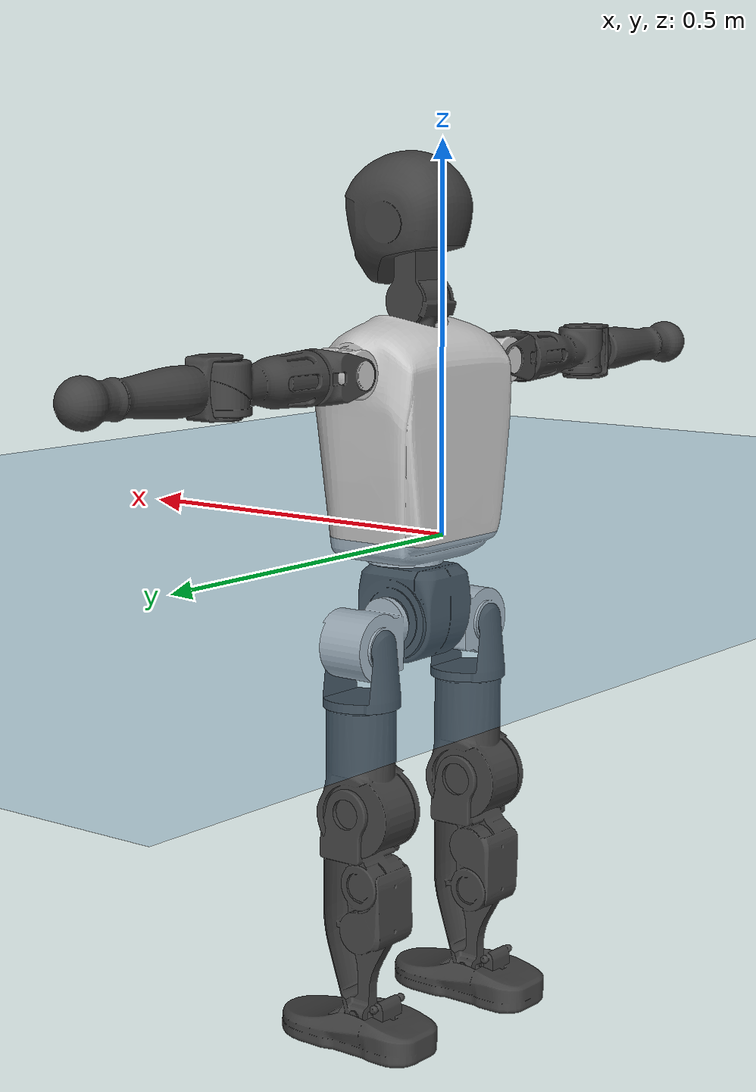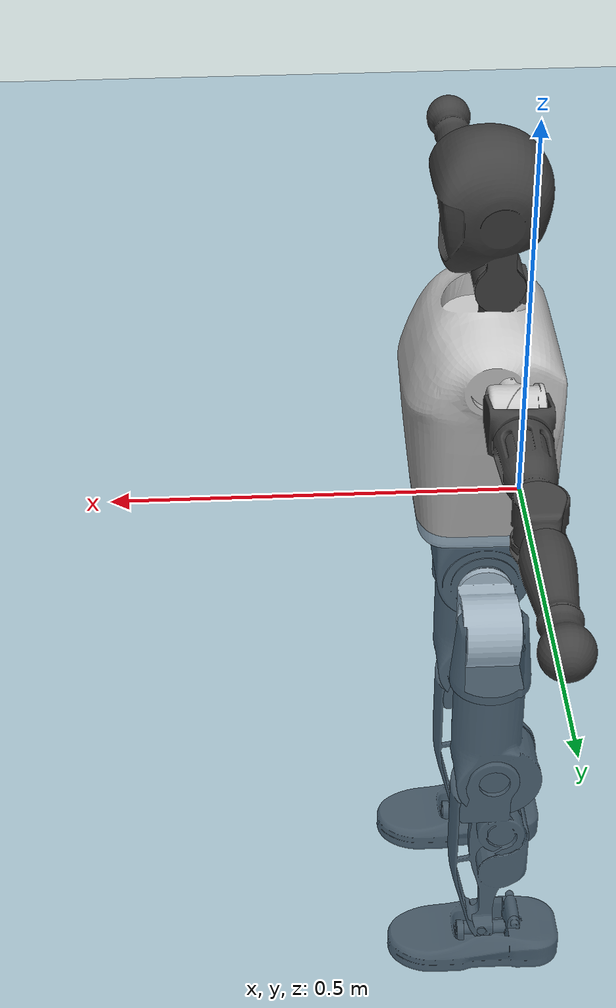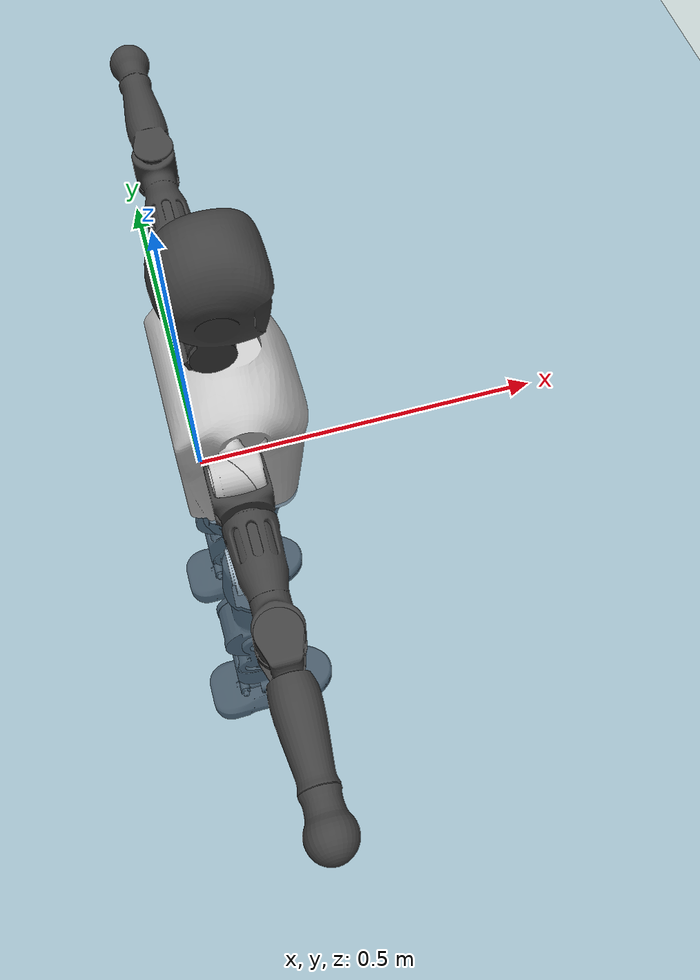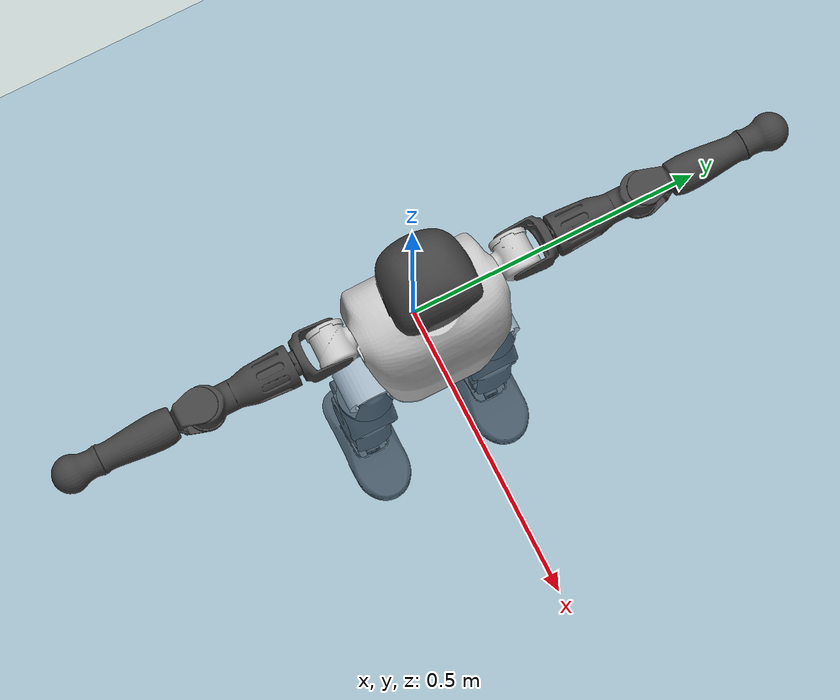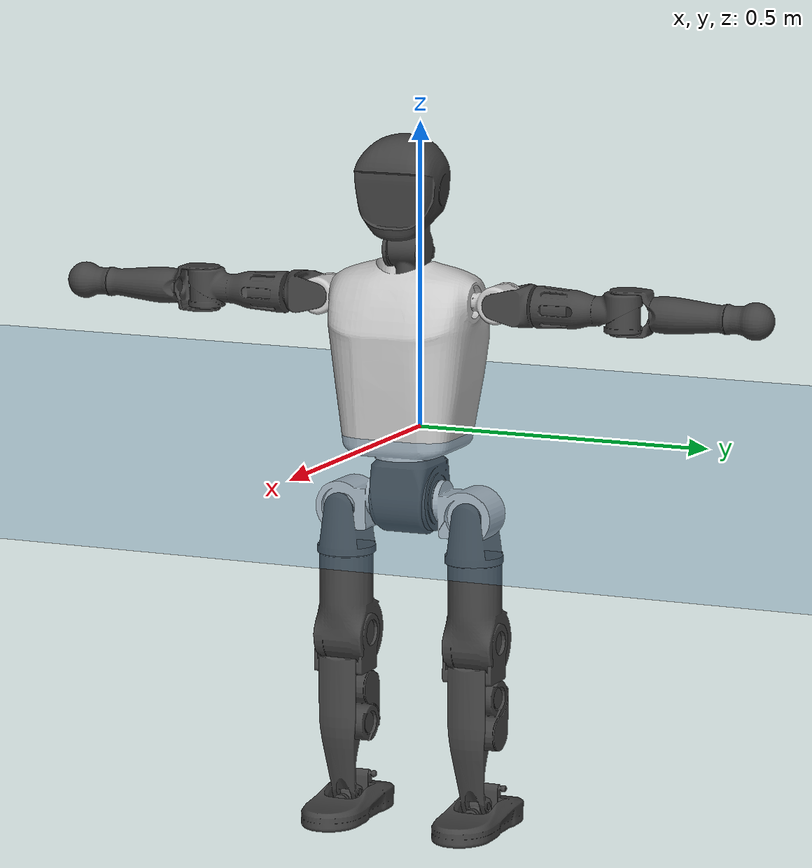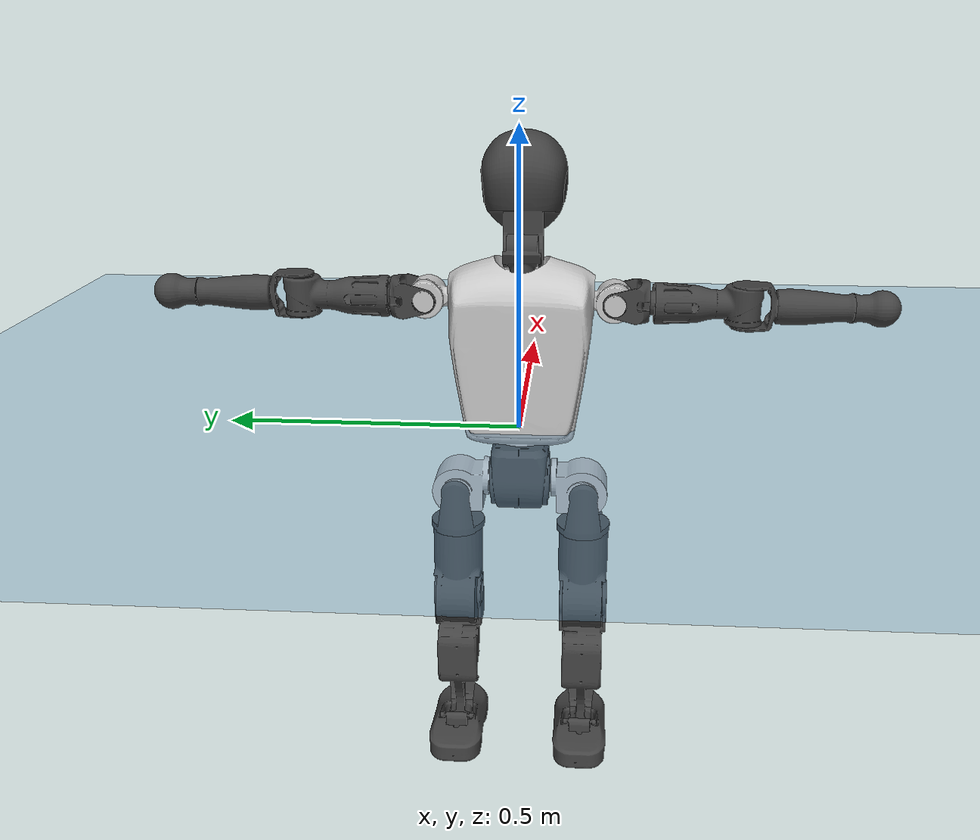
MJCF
<mujoco model="T1">
  <compiler angle="radian" assetdir="assets" balanceinertia="true" inertiafromgeom="false"/>

  <option timestep="0.005" density="1.2" viscosity="2e-05"/>

  <size nkey="1"/>

  <visual>
    <quality shadowsize="8192"/>
    <map shadowclip="0.5"/>
  </visual>

  <default>
    <default class="/">
      <joint armature="0.01" damping="0.01" frictionloss="0.1"/>
      <geom contype="0" conaffinity="0" group="1" solref="-1000 -80"/>
      <site size="0.01 0.005 0.005" group="5"/>
      <general forcelimited="true" biastype="affine" gainprm="25" biasprm="0 -25 -0.6"/>
      <default class="t1">
        <geom rgba="0.25 0.25 0.25 1"/>
        <default class="visual">
          <geom type="mesh" group="2"/>
        </default>
        <default class="collision">
          <geom group="3"/>
        </default>
        <default class="foot">
          <geom size="0.1115 0.05 0.015" type="box" condim="6" group="4" priority="1" solimp="0.015 1 0.015"/>
        </default>
        <default class="reward_collision_sphere">
          <geom group="5" rgba="1 0 0 1"/>
        </default>
      </default>
    </default>
  </default>

  <asset>
    <texture type="skybox" colorspace="auto" name="//unnamed_texture_0" builtin="gradient" rgb1="0.95 0.95 0.95" rgb2="0.95 0.95 0.95" width="100" height="600"/>
    <texture type="2d" colorspace="auto" name="texplane" builtin="checker" rgb1="0.345 0.575 0.748" rgb2="0.345 0.575 0.748" markrgb="1 1 1" width="512" height="512"/>
    <material name="MatPlane" class="/" texture="texplane" texuniform="true" texrepeat="2 2" specular="0.9"/>
    <mesh name="Trunk" class="/" file="Trunk.stl"/>
    <mesh name="H1" class="/" file="H1.stl"/>
    <mesh name="H2" class="/" file="H2.stl"/>
    <mesh name="AL1" class="/" file="AL1.stl"/>
    <mesh name="AL2" class="/" file="AL2.stl"/>
    <mesh name="AL3" class="/" file="AL3.stl"/>
    <mesh name="left_hand_link" class="/" file="left_hand_link.stl"/>
    <mesh name="AR1" class="/" file="AR1.stl"/>
    <mesh name="AR2" class="/" file="AR2.stl"/>
    <mesh name="AR3" class="/" file="AR3.stl"/>
    <mesh name="right_hand_link" class="/" file="right_hand_link.stl"/>
    <mesh name="Waist" class="/" file="Waist.stl"/>
    <mesh name="Hip_Pitch_Left" class="/" file="Hip_Pitch_Left.stl"/>
    <mesh name="Hip_Roll_Left" class="/" file="Hip_Roll_Left.stl"/>
    <mesh name="Hip_Yaw_Left" class="/" file="Hip_Yaw_Left.stl"/>
    <mesh name="Shank_Left" class="/" file="Shank_Left.stl"/>
    <mesh name="Ankle_Cross_Left" class="/" file="Ankle_Cross_Left.stl"/>
    <mesh name="left_foot_link" class="/" file="left_foot_link.stl"/>
    <mesh name="Hip_Pitch_Right" class="/" file="Hip_Pitch_Right.stl"/>
    <mesh name="Hip_Roll_Right" class="/" file="Hip_Roll_Right.stl"/>
    <mesh name="Hip_Yaw_Right" class="/" file="Hip_Yaw_Right.stl"/>
    <mesh name="Shank_Right" class="/" file="Shank_Right.stl"/>
    <mesh name="Ankle_Cross_Right" class="/" file="Ankle_Cross_Right.stl"/>
    <mesh name="right_foot_link" class="/" file="right_foot_link.stl"/>
  </asset>

  <worldbody>
    <geom name="floor" class="/" size="100 100 0.125" type="plane" group="0" material="MatPlane"/>
    <light name="toplight_shadow" class="/" pos="0 0 5" dir="0.0990148 0.0990148 -0.990148" type="directional" ambient="0.04 0.04 0.04" diffuse="0.55 0.55 0.55" specular="0.12 0.12 0.12"/>
    <light name="toplight_fill" class="/" pos="0 0 5" dir="0.0990148 0.0990148 -0.990148" type="directional" castshadow="false" ambient="0.04 0.04 0.04" diffuse="0.3 0.3 0.3" specular="0.08 0.08 0.08"/>
    <body name="trunk" childclass="t1" pos="-0.00270955 -0.000723927 0.00238562" quat="0.999999 0.000805268 -0.000740924 4.04128e-05">
      <inertial pos="0.0380676 -0.00329565 0.104837" quat="0.999908 0.00350642 -0.0111655 -0.0068335" mass="9.0231" diaginertia="0.0150865 0.100706 0.0496549"/>
      <joint name="//unnamed_joint_0" type="free" armature="0" damping="0" frictionloss="0"/>
      <geom name="//unnamed_geom_1" class="visual" rgba="0.76 0.76 0.76 1" mesh="Trunk"/>
      <geom name="//unnamed_geom_2" class="collision" size="0.0678573 0.0904765 0.135715" pos="0.0414521 0 0.116704" type="box"/>
      <geom name="//unnamed_geom_3" class="reward_collision_sphere" size="0.104048" pos="0.0414521 0 0.0972534"/>
      <geom name="//unnamed_geom_4" class="reward_collision_sphere" size="0.0135715" pos="0.0414521 0.0893257 0"/>
      <geom name="//unnamed_geom_5" class="reward_collision_sphere" size="0.0135715" pos="0.0414521 -0.0893257 0"/>
      <geom name="//unnamed_geom_6" class="reward_collision_sphere" size="0.0135715" pos="0.0414521 0.112445 0.175056"/>
      <geom name="//unnamed_geom_7" class="reward_collision_sphere" size="0.0135715" pos="0.0414521 -0.112445 0.175056"/>
      <site name="imu" pos="-0.00961936 0.00155812 -0.00321452" size="0.00904765"/>
      <camera name="track" pos="0 -2.10178 0" quat="0.707107 0.707107 0 0" mode="trackcom"/>
      <camera name="ego_camera" pos="0.084286 0 0.408464" quat="-0.5 -0.5 0.5 0.5"/>
      <body name="H1" pos="0.0430522 -0.0013986 0.235492" quat="0.999999 -0.000265962 -0.000142749 0.00111948">
        <inertial pos="0.00143111 -0.00196958 0.0579482" quat="0.768869 -0.0207164 0.0015671 0.639068" mass="0.33814" diaginertia="3.98299e-05 0.000299879 0.000130348"/>
        <joint name="AAHead_yaw" pos="0 0 0" axis="0.000383785 0.00227202 0.999997" range="-1.60677 1.60007" armature="0.0101128" damping="0.0129377" frictionloss="0.0837761"/>
        <geom name="//unnamed_geom_8" class="visual" mesh="H1"/>
        <body name="H2" pos="-2.46929e-05 -0.00167856 0.0594864" quat="1 6.28541e-05 -8.2378e-05 -0.000326218">
          <inertial pos="0.00489349 0.00253532 0.096451" quat="0.987105 0.114594 -0.0749979 -0.0828685" mass="0.460663" diaginertia="0.000314934 0.00250348 0.00149922"/>
          <joint name="Head_pitch" pos="0 0 0" axis="0.00019824 -0.99999 0.00449365" range="-1.25231 0.399671" armature="0.00981558" damping="0.00499669" frictionloss="0.0780825"/>
          <geom name="//unnamed_geom_9" class="visual" mesh="H2"/>
          <geom name="//unnamed_geom_10" class="collision" size="0.0723812" pos="0.00690869 0 0.106979"/>
          <geom name="//unnamed_geom_11" class="reward_collision_sphere" size="0.0814288" pos="0.0138174 0 0.0972534"/>
        </body>
      </body>
      <body name="AL1" pos="0.0378469 0.110447 0.214782" quat="0.999999 -0.000699535 0.000647295 0.00119016">
        <inertial pos="0.000340539 0.049511 0.00134849" quat="0.507036 0.494076 -0.501627 0.497166" mass="0.380416" diaginertia="0.000209996 0.00159694 0.000241182"/>
        <joint name="Left_Shoulder_Pitch" pos="0 0 0" axis="8.76985e-05 1 0.000105796" stiffness="0.0138963" range="-3.31795 1.16756" armature="0.00786337" damping="0.00267777" frictionloss="0.0955452"/>
        <geom name="//unnamed_geom_12" class="visual" rgba="0.76 0.76 0.76 1" mesh="AL1"/>
        <body name="AL2" pos="-0.00121657 0.0490662 -0.000651544" quat="0.999999 -0.000467013 0.000409843 -0.00133975">
          <inertial pos="0.0019595 0.0421348 7.61957e-05" quat="0.486884 0.511176 -0.489261 0.51212" mass="0.119343" diaginertia="6.26407e-05 0.00043106 0.000154736"/>
          <joint name="Left_Shoulder_Roll" pos="0 0 0" axis="-0.999964 0.0084743 -0.000386203" stiffness="0.0124488" range="-1.58443 1.6911" armature="0.0077187" damping="0.0163769" frictionloss="0.0885909"/>
          <geom name="//unnamed_geom_13" class="visual" mesh="AL2"/>
          <body name="AL3" pos="0.00192817 0.061682 -0.000300989" quat="1 0.000145103 0.00029564 -0.000408553">
            <inertial pos="0.000381875 0.0893164 -0.0029648" quat="0.711263 0.702869 -0.00844161 0.00288254" mass="0.70942" diaginertia="0.00194042 0.0159304 0.000535521"/>
            <joint name="Left_Elbow_Pitch" pos="0 0 0" axis="0.00352905 -0.999993 0.00106572" range="-2.3185 2.29979" armature="0.0086987" damping="0.0109736" frictionloss="0.0954799"/>
            <geom name="//unnamed_geom_14" class="visual" mesh="AL3"/>
            <geom name="//unnamed_geom_15" class="collision" size="0.0271429 0.0678573" pos="0 0.0525445 0" quat="0.707105 0.707108 0 0" type="cylinder"/>
            <geom name="//unnamed_geom_16" class="reward_collision_sphere" size="0.0325715"/>
            <body name="left_hand_link" pos="0.00276099 0.155112 0.00164728" quat="1 -0.000149685 -0.000628942 0.000550744">
              <inertial pos="-0.000211226 0.114039 -0.000237235" quat="0.706246 0.707951 0.000547348 -0.00454143" mass="0.249418" diaginertia="0.00132599 0.0102366 0.000192139"/>
              <joint name="Left_Elbow_Yaw" pos="0 0 0" axis="-0.0122364 0.00344455 0.999919" stiffness="0.00318928" range="-2.43368 -0.0200726" armature="0.0079075" damping="0.00845081" frictionloss="0.100356"/>
              <geom name="//unnamed_geom_17" class="visual" mesh="left_hand_link"/>
              <geom name="//unnamed_geom_18" class="collision" size="0.0271429 0.0791669" pos="0 0.136616 0" quat="0.707105 0.707108 0 0" type="cylinder"/>
              <geom name="//unnamed_geom_19" class="reward_collision_sphere" size="0.0452382"/>
              <geom name="//unnamed_geom_20" class="reward_collision_sphere" size="0.0316668" pos="0 0.115598 0"/>
              <geom name="//unnamed_geom_21" class="reward_collision_sphere" size="0.0316668" pos="0 0.225941 0"/>
            </body>
          </body>
        </body>
      </body>
      <body name="AR1" pos="0.0386897 -0.107652 0.211896" quat="1 0.000699512 -0.000109869 -0.000697723">
        <inertial pos="-0.00195168 -0.0468362 -0.000717942" quat="0.505171 0.498024 -0.502062 0.49468" mass="0.392844" diaginertia="0.000218238 0.0016778 0.000264957"/>
        <joint name="Right_Shoulder_Pitch" pos="0 0 0" axis="0.00121083 -0.999999 -0.00081371" stiffness="0.00730529" range="-1.2767 3.30331" armature="0.0081464" damping="0.0195674" frictionloss="0.0998557"/>
        <geom name="//unnamed_geom_22" class="visual" rgba="0.76 0.76 0.76 1" mesh="AR1"/>
        <body name="AR2" pos="-0.00206568 -0.0484101 0.000640372" quat="1 -3.18993e-06 3.79967e-05 0.000237745">
          <inertial pos="0.00112638 -0.0397356 0.00125989" quat="0.516407 0.483205 -0.505148 0.494633" mass="0.125979" diaginertia="6.37921e-05 0.000462944 0.000158264"/>
          <joint name="Right_Shoulder_Roll" pos="0 0 0" axis="-0.999998 0.00189122 -6.03448e-05" range="-1.78972 1.56646" armature="0.00902359" damping="0.00676946" frictionloss="0.0918662"/>
          <geom name="//unnamed_geom_23" class="visual" mesh="AR2"/>
          <body name="AR3" pos="0.00115135 -0.0642065 -0.00279446" quat="1 0.000354 -2.23097e-05 8.37004e-05">
            <inertial pos="0.00250228 -0.0920467 -0.00127836" quat="0.707086 0.707121 -0.00291225 -0.000234523" mass="0.78085" diaginertia="0.0021068 0.0172623 0.000574814"/>
            <joint name="Right_Elbow_Pitch" pos="0 0 0" axis="-0.00718253 0.999911 -0.0112431" range="-2.27142 2.26118" armature="0.00866623" damping="0.00785885" frictionloss="0.093027"/>
            <geom name="//unnamed_geom_24" class="visual" mesh="AR3"/>
            <geom name="//unnamed_geom_25" class="collision" size="0.0271429 0.0678573" pos="0 -0.0525445 0" quat="0.707105 0.707108 0 0" type="cylinder"/>
            <geom name="//unnamed_geom_26" class="reward_collision_sphere" size="0.0325715"/>
            <body name="right_hand_link" pos="-0.00104834 -0.153654 -0.00189389" quat="1 0.000147577 0.000959384 0.00022583">
              <inertial pos="-0.00221433 -0.114899 0.00246817" quat="0.70762 0.70655 0.00423181 0.00656242" mass="0.234527" diaginertia="0.00129621 0.0104091 0.000192447"/>
              <joint name="Right_Elbow_Yaw" pos="0 0 0" axis="0.00696913 0.00242213 0.999973" stiffness="0.00596542" range="0.013375 2.40666" armature="0.00827079" damping="0" frictionloss="0.102024"/>
              <geom name="//unnamed_geom_27" class="visual" mesh="right_hand_link"/>
              <geom name="//unnamed_geom_28" class="collision" size="0.0271429 0.0791669" pos="0 -0.136616 0" quat="0.707105 0.707108 0 0" type="cylinder"/>
              <geom name="//unnamed_geom_29" class="reward_collision_sphere" size="0.0452382"/>
              <geom name="//unnamed_geom_30" class="reward_collision_sphere" size="0.0316668" pos="0 -0.115598 0"/>
              <geom name="//unnamed_geom_31" class="reward_collision_sphere" size="0.0316668" pos="0 -0.225941 0"/>
            </body>
          </body>
        </body>
      </body>
      <body name="Waist" pos="0.0465795 0.00133028 -0.110623" quat="0.999999 -0.00011192 -0.00101941 -0.000679749">
        <inertial pos="0.0041351 -0.00164014 0.00961634" quat="0.983933 -0.00574538 -0.178288 -0.00747468" mass="1.86283" diaginertia="0.000836472 0.00675262 0.00414464"/>
        <joint name="Waist" pos="0 0 0" axis="-0.000732687 0.000135504 1" stiffness="0.0160681" range="-1.5621 1.56946" armature="0.0102288" damping="0.00608997" frictionloss="0.0891881"/>
        <geom name="//unnamed_geom_32" class="visual" mesh="Waist"/>
        <body name="Hip_Pitch_Left" pos="0.000812981 0.110537 -0.00300584" quat="0.999999 0.000696299 0.00145756 -0.0002758">
          <inertial pos="-0.00101249 -0.00526764 -0.0173002" quat="0.974703 0.222663 0.0188019 -0.00465864" mass="0.768807" diaginertia="0.000282131 0.00184188 0.00112362"/>
          <joint name="Left_Hip_Pitch" pos="0 0 0" axis="-0.00644657 0.999852 0.0159377" stiffness="0.000711132" range="-1.78763 1.56087" armature="0.0088838" damping="0.0100918" frictionloss="0.0827988"/>
          <geom name="//unnamed_geom_33" class="visual" rgba="0.76 0.76 0.76 1" mesh="Hip_Pitch_Left"/>
          <body name="Hip_Roll_Left" pos="-0.00176954 0.00231981 -0.0202918" quat="0.999999 0.00117974 -0.000637568 0.000378509">
            <inertial pos="-0.000951575 0.000535672 -0.051379" quat="0.708015 -0.00914252 0.000288703 0.706138" mass="0.304653" diaginertia="0.000277937 0.00198881 0.000463342"/>
            <joint name="Left_Hip_Roll" pos="0 0 0" axis="-0.99993 -0.00553144 0.0104544" range="-1.54752 0.253957" armature="0.00875233" damping="0.0168105" frictionloss="0.0839422"/>
            <geom name="//unnamed_geom_34" class="visual" mesh="Hip_Roll_Left"/>
            <geom name="//unnamed_geom_35" class="reward_collision_sphere" size="0.0497621"/>
            <body name="Hip_Yaw_Left" pos="-0.00201586 0.000551609 -0.0791104" quat="1 0.000556289 -0.000183556 0.000483913">
              <inertial pos="-0.00368357 0.000392575 -0.0879086" quat="0.697162 -0.0282746 -0.0292872 0.715757" mass="1.53899" diaginertia="0.003902 0.0320371 0.00211013"/>
              <joint name="Left_Hip_Yaw" pos="0 0 0" axis="-0.000456922 0.00308337 -0.999995" range="-0.955563 0.986975" armature="0.00881368" damping="0.0159331" frictionloss="0.0862095"/>
              <geom name="//unnamed_geom_36" class="visual" mesh="Hip_Yaw_Left"/>
              <geom name="//unnamed_geom_37" class="collision" size="0.0452382 0.0723812" type="cylinder"/>
              <body name="Shank_Left" pos="-0.00747146 -0.000735516 -0.130688" quat="1 -6.9732e-05 4.99217e-05 0.000223917">
                <inertial pos="-0.00197858 0.00175777 -0.121332" quat="0.997835 0.00325236 -0.0254581 0.0605492" mass="1.2848" diaginertia="0.00534178 0.0443398 0.0015851"/>
                <joint name="Left_Knee_Pitch" pos="0 0 0" axis="-0.00830515 0.999948 0.00599442" range="0.0468968 2.35147" armature="0.0103375" damping="0.0213712" frictionloss="0.077949"/>
                <geom name="//unnamed_geom_38" class="visual" mesh="Shank_Left"/>
                <geom name="//unnamed_geom_39" class="collision" size="0.0452382 0.0678573" pos="0 0 -0.116704" type="cylinder"/>
                <geom name="//unnamed_geom_40" class="reward_collision_sphere" size="0.0588097"/>
                <body name="Ankle_Cross_Left" pos="0.00303164 0.00192629 -0.274165" quat="1 0.000267642 -0.000198385 -6.80275e-05">
                  <inertial pos="-0.00225277 9.3792e-05 -0.00559342" quat="0.436208 0.554715 0.554304 0.441318" mass="0.0546618" diaginertia="4.75885e-06 3.46823e-05 1.00548e-05"/>
                  <joint name="Left_Ankle_Pitch" pos="0 0 0" axis="0.00405717 0.999973 -0.00614478" stiffness="0.009476" range="-0.926146 0.301041" armature="0.00905432" damping="0.0149702" frictionloss="0.07885"/>
                  <geom name="//unnamed_geom_41" class="visual" mesh="Ankle_Cross_Left"/>
                  <body name="left_foot_link" pos="-0.000525632 0.0020341 -0.0122826" quat="1 -0.000784143 -0.000264419 -0.000226629">
                    <inertial pos="-0.000883855 -0.00109305 -0.0115439" quat="-0.00235035 0.622202 0.000222506 0.782853" mass="0.521932" diaginertia="0.000435345 0.00316706 0.00194051"/>
                    <joint name="Left_Ankle_Roll" pos="0 0 0" axis="-0.999874 -0.0143223 0.00687923" range="-0.419587 0.393858" armature="0.00915621" damping="0.00160272" frictionloss="0.102815"/>
                    <geom name="//unnamed_geom_42" class="visual" mesh="left_foot_link"/>
                    <geom name="left_foot" class="foot" size="0.10258 0.0410112 0.0148444" pos="0.00690869 0 -0.014588"/>
                    <geom name="//unnamed_geom_44" class="reward_collision_sphere" size="0.0470478" pos="0.00690869 0 -0.014588"/>
                    <geom name="//unnamed_geom_45" class="reward_collision_sphere" size="0.0271429" pos="0.0656326 -0.0241705 -0.014588"/>
                    <geom name="//unnamed_geom_46" class="reward_collision_sphere" size="0.0271429" pos="-0.0483608 -0.0241705 -0.014588"/>
                    <site name="left_foot" class="foot" pos="0.00690869 0 -0.014588" size="0.00904765"/>
                  </body>
                </body>
              </body>
            </body>
          </body>
        </body>
        <body name="Hip_Pitch_Right" pos="-0.0011613 -0.110746 -0.0019072" quat="1 -0.000820921 0.000506397 0.000161787">
          <inertial pos="-0.00193319 0.00527462 -0.0168853" quat="0.973572 -0.227913 0.0141967 -0.0035299" mass="0.746513" diaginertia="0.000293591 0.00193896 0.00108576"/>
          <joint name="Right_Hip_Pitch" pos="0 0 0" axis="-0.0114044 -0.999897 -0.00866065" range="-1.57207 1.79517" armature="0.00903317" damping="0.00192018" frictionloss="0.0965824"/>
          <geom name="//unnamed_geom_47" class="visual" rgba="0.76 0.76 0.76 1" mesh="Hip_Pitch_Right"/>
          <body name="Hip_Roll_Right" pos="-8.6118e-05 -0.00265025 -0.0217917" quat="1 -0.000453267 0.000108356 4.42646e-05">
            <inertial pos="0.000835143 -0.00254328 -0.0530528" quat="0.707021 0.000664278 -0.0163008 0.707005" mass="0.287467" diaginertia="0.000278172 0.00196232 0.000436075"/>
            <joint name="Right_Hip_Roll" pos="0 0 0" axis="-0.999991 0.00375338 -0.00185889" stiffness="0.00355276" range="-0.242922 1.53115" armature="0.010229" damping="0.0142974" frictionloss="0.0794815"/>
            <geom name="//unnamed_geom_48" class="visual" mesh="Hip_Roll_Right"/>
            <geom name="//unnamed_geom_49" class="reward_collision_sphere" size="0.0497621"/>
            <body name="Hip_Yaw_Right" pos="-0.00178171 -0.00122309 -0.0798606" quat="1 3.70032e-05 2.42449e-05 9.52109e-05">
              <inertial pos="-0.0050136 -0.000130611 -0.0881775" quat="0.709053 -0.0336078 -0.0289098 0.70376" mass="1.57005" diaginertia="0.00398293 0.0325053 0.0022367"/>
              <joint name="Right_Hip_Yaw" pos="0 0 0" axis="-0.000677476 0.000302427 -1" range="-1.03699 0.998914" armature="0.00978859" damping="0" frictionloss="0.0819655"/>
              <geom name="//unnamed_geom_50" class="visual" mesh="Hip_Yaw_Right"/>
              <geom name="//unnamed_geom_51" class="collision" size="0.0452382 0.0723812" type="cylinder"/>
              <body name="Shank_Right" pos="-0.0105528 -0.00176202 -0.133162" quat="1 -4.02122e-05 -0.000201984 -0.000145458">
                <inertial pos="-0.00575723 -0.00284328 -0.116635" quat="0.999375 -0.00125235 -0.0253052 -0.0246538" mass="1.29663" diaginertia="0.00523494 0.0423558 0.00162661"/>
                <joint name="Right_Knee_Pitch" pos="0 0 0" axis="0.0022544 -0.999953 -0.00943352" range="-2.34553 -0.00570937" armature="0.0101594" damping="0.0146197" frictionloss="0.102087"/>
                <geom name="//unnamed_geom_52" class="visual" mesh="Shank_Right"/>
                <geom name="//unnamed_geom_53" class="collision" size="0.0452382 0.0678573" pos="0 0 -0.116704" type="cylinder"/>
                <geom name="//unnamed_geom_54" class="reward_collision_sphere" size="0.0588097"/>
                <body name="Ankle_Cross_Right" pos="0.00244261 0.00225575 -0.27203" quat="0.999999 0.00106171 1.38318e-05 0.000743157">
                  <inertial pos="0.000104028 0.00229669 -0.00732303" quat="0.435696 0.546411 0.555618 0.450437" mass="0.0532619" diaginertia="4.62322e-06 3.24712e-05 9.57437e-06"/>
                  <joint name="Right_Ankle_Pitch" pos="0 0 0" axis="-0.00612042 -0.999926 0.0105082" range="-0.405482 0.860322" armature="0.0100446" damping="0.0164663" frictionloss="0.10241"/>
                  <geom name="//unnamed_geom_55" class="visual" mesh="Ankle_Cross_Right"/>
                  <body name="right_foot_link" pos="-0.00143266 -0.00121043 -0.0106851" quat="1 0.000132272 -0.000236406 -1.53228e-05">
                    <inertial pos="-0.00167573 0.000661084 -0.00703164" quat="-0.00213375 0.618655 -0.00382806 0.785651" mass="0.510111" diaginertia="0.000412711 0.00306821 0.00184711"/>
                    <joint name="Right_Ankle_Roll" pos="0 0 0" axis="-0.999996 0.00199421 0.00180167" range="-0.43578 0.385015" armature="0.0103435" damping="0.0143344" frictionloss="0.0946115"/>
                    <geom name="//unnamed_geom_56" class="visual" mesh="right_foot_link"/>
                    <geom name="right_foot" class="foot" size="0.101754 0.0400879 0.0126472" pos="0.00690869 0 -0.014588"/>
                    <geom name="//unnamed_geom_58" class="reward_collision_sphere" size="0.0361906"/>
                    <geom name="//unnamed_geom_59" class="reward_collision_sphere" size="0.0271429" pos="0.00690869 0 -0.014588"/>
                    <geom name="//unnamed_geom_60" class="reward_collision_sphere" size="0.0271429" pos="0.0656326 0.0241705 -0.014588"/>
                    <geom name="//unnamed_geom_61" class="reward_collision_sphere" size="0.0271429" pos="-0.0483608 0.0241705 -0.014588"/>
                    <site name="right_foot" class="foot" pos="0.00690869 0 -0.014588" size="0.00904765"/>
                  </body>
                </body>
              </body>
            </body>
          </body>
        </body>
      </body>
    </body>
  </worldbody>

  <contact>
    <pair class="/" geom1="floor" geom2="left_foot" name="//unnamed_contact_0"/>
    <pair class="/" geom1="floor" geom2="right_foot" name="//unnamed_contact_1"/>
  </contact>

  <actuator>
    <general name="AAHead_yaw" class="/" joint="AAHead_yaw" forcerange="-6.37877 6.37877" gainprm="21.1477" biasprm="0 -21.1477 -0.555349"/>
    <general name="Head_pitch" class="/" joint="Head_pitch" forcerange="-6.98477 6.98477" gainprm="21.1477" biasprm="0 -21.1477 -0.555349"/>
    <general name="Left_Shoulder_Pitch" class="/" joint="Left_Shoulder_Pitch" forcerange="-15.7373 15.7373" gainprm="21.1477" biasprm="0 -21.1477 -0.555349"/>
    <general name="Left_Shoulder_Roll" class="/" joint="Left_Shoulder_Roll" forcerange="-17.7976 17.7976" gainprm="21.1477" biasprm="0 -21.1477 -0.555349"/>
    <general name="Left_Elbow_Pitch" class="/" joint="Left_Elbow_Pitch" forcerange="-16.8699 16.8699" gainprm="21.1477" biasprm="0 -21.1477 -0.555349"/>
    <general name="Left_Elbow_Yaw" class="/" joint="Left_Elbow_Yaw" forcerange="-15.1877 15.1877" gainprm="21.1477" biasprm="0 -21.1477 -0.555349"/>
    <general name="Right_Shoulder_Pitch" class="/" joint="Right_Shoulder_Pitch" forcerange="-16.2764 16.2764" gainprm="21.1477" biasprm="0 -21.1477 -0.555349"/>
    <general name="Right_Shoulder_Roll" class="/" joint="Right_Shoulder_Roll" forcerange="-16.8364 16.8364" gainprm="21.1477" biasprm="0 -21.1477 -0.555349"/>
    <general name="Right_Elbow_Pitch" class="/" joint="Right_Elbow_Pitch" forcerange="-17.5361 17.5361" gainprm="21.1477" biasprm="0 -21.1477 -0.555349"/>
    <general name="Right_Elbow_Yaw" class="/" joint="Right_Elbow_Yaw" forcerange="-15.5411 15.5411" gainprm="21.1477" biasprm="0 -21.1477 -0.555349"/>
    <general name="Waist" class="/" joint="Waist" forcerange="-27.2027 27.2027" gainprm="21.1477" biasprm="0 -21.1477 -0.555349"/>
    <general name="Left_Hip_Pitch" class="/" joint="Left_Hip_Pitch" forcerange="-43.9256 43.9256" gainprm="21.1477" biasprm="0 -21.1477 -0.555349"/>
    <general name="Left_Hip_Roll" class="/" joint="Left_Hip_Roll" forcerange="-25.9083 25.9083" gainprm="21.1477" biasprm="0 -21.1477 -0.555349"/>
    <general name="Left_Hip_Yaw" class="/" joint="Left_Hip_Yaw" forcerange="-29.9299 29.9299" gainprm="21.1477" biasprm="0 -21.1477 -0.555349"/>
    <general name="Left_Knee_Pitch" class="/" joint="Left_Knee_Pitch" forcerange="-53.8947 53.8947" gainprm="21.1477" biasprm="0 -21.1477 -0.555349"/>
    <general name="Left_Ankle_Pitch" class="/" joint="Left_Ankle_Pitch" forcerange="-19.7994 19.7994" gainprm="21.1477" biasprm="0 -21.1477 -0.555349"/>
    <general name="Left_Ankle_Roll" class="/" joint="Left_Ankle_Roll" forcerange="-13.5306 13.5306" gainprm="21.1477" biasprm="0 -21.1477 -0.555349"/>
    <general name="Right_Hip_Pitch" class="/" joint="Right_Hip_Pitch" forcerange="-41.0557 41.0557" gainprm="21.1477" biasprm="0 -21.1477 -0.555349"/>
    <general name="Right_Hip_Roll" class="/" joint="Right_Hip_Roll" forcerange="-26.9989 26.9989" gainprm="21.1477" biasprm="0 -21.1477 -0.555349"/>
    <general name="Right_Hip_Yaw" class="/" joint="Right_Hip_Yaw" forcerange="-26.4816 26.4816" gainprm="21.1477" biasprm="0 -21.1477 -0.555349"/>
    <general name="Right_Knee_Pitch" class="/" joint="Right_Knee_Pitch" forcerange="-49.0245 49.0245" gainprm="21.1477" biasprm="0 -21.1477 -0.555349"/>
    <general name="Right_Ankle_Pitch" class="/" joint="Right_Ankle_Pitch" forcerange="-17.4453 17.4453" gainprm="21.1477" biasprm="0 -21.1477 -0.555349"/>
    <general name="Right_Ankle_Roll" class="/" joint="Right_Ankle_Roll" forcerange="-14.6484 14.6484" gainprm="21.1477" biasprm="0 -21.1477 -0.555349"/>
  </actuator>

  <sensor>
    <gyro site="imu" name="imu_angular_velocity"/>
    <velocimeter site="imu" name="imu_linear_velocity"/>
    <framelinvel objtype="site" objname="left_foot" name="left_foot_global_linear_velocity"/>
    <framelinvel objtype="site" objname="right_foot" name="right_foot_global_linear_velocity"/>
  </sensor>

  <keyframe>
    <key name="home" qpos="0 0 0.6385 1 0 0 0 0 0 0 1.4 0 -0.4 0 -1.4 0 0.4 0 -0.4 0 0 0.8 -0.4 0 0.4 0 0 -0.8 0.4 0"/>
  </keyframe>
</mujoco>
